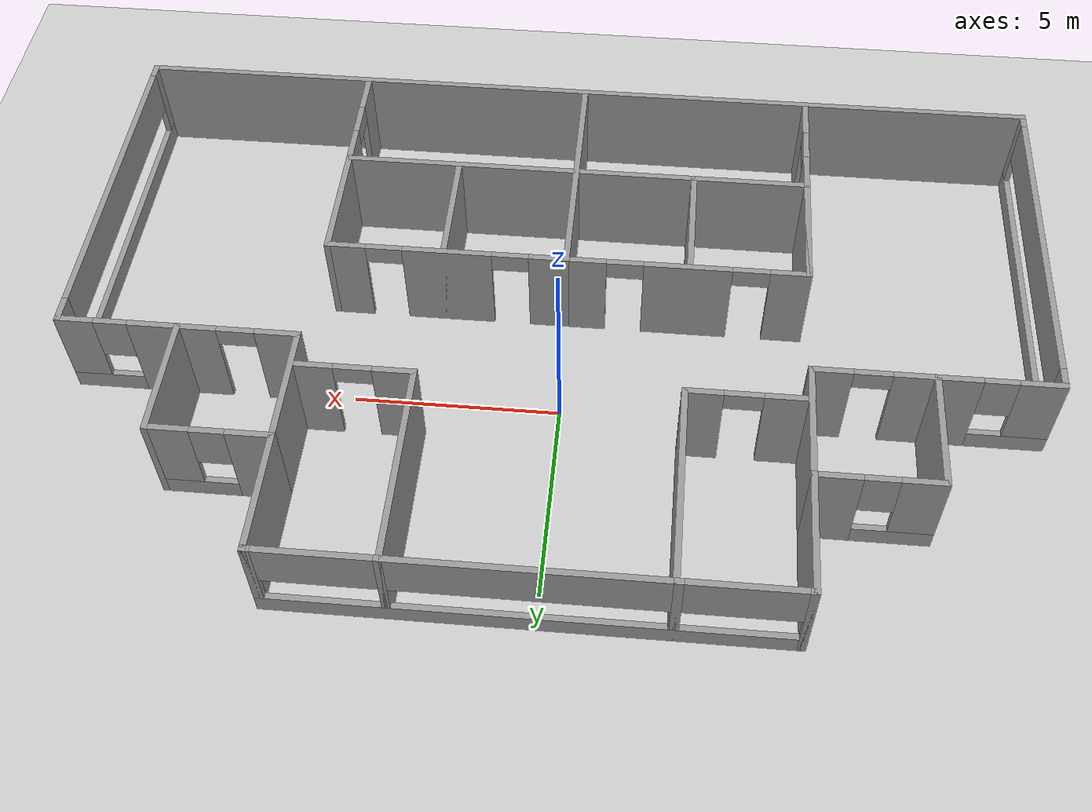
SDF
<sdf version="1.6">
 <world name="default">
  <model name="ground_plane">
   <static>1</static>
   <link name="link">
    <collision name="collision">
     <geometry><plane><normal>0 0 1</normal><size>100 100</size></plane></geometry>
     <surface><friction><ode><mu>100</mu><mu2>50</mu2></ode></friction></surface>
    </collision>
    <visual name="visual">
     <cast_shadows>0</cast_shadows>
     <geometry><plane><normal>0 0 1</normal><size>100 100</size></plane></geometry>
     <material>
      <script><uri>file://media/materials/scripts/gazebo.material</uri><name>Gazebo/Grey</name></script>
     </material>
    </visual>
   </link>
  </model>
  <model name="my_world">
   <pose>0.149259 -1.52681 0 0 -0 0</pose>
   <link name="Wall_11">
    <pose>-0 7.275 0 0 -0 0</pose>
    <visual name="Wall_11_Visual_0">
     <pose>-5.9021 0 1.25 0 -0 0</pose>
     <geometry><box><size>0.195806 0.15 2.5</size></box></geometry>
     <material>
      <script><uri>file://media/materials/scripts/gazebo.material</uri><name>Gazebo/Grey</name></script>
      <ambient>1 1 1 1</ambient>
     </material>
     <meta><layer>0</layer></meta>
    </visual>
    <collision name="Wall_11_Collision_0">
     <geometry><box><size>0.195806 0.15 2.5</size></box></geometry>
     <pose>-5.9021 0 1.25 0 -0 0</pose>
    </collision>
    <visual name="Wall_11_Visual_1">
     <pose>0.097903 0 0.25 0 -0 0</pose>
     <geometry><box><size>11.8042 0.15 0.5</size></box></geometry>
     <material>
      <script><uri>file://media/materials/scripts/gazebo.material</uri><name>Gazebo/Grey</name></script>
      <ambient>1 1 1 1</ambient>
     </material>
     <meta><layer>0</layer></meta>
    </visual>
    <collision name="Wall_11_Collision_1">
     <geometry><box><size>11.8042 0.15 0.5</size></box></geometry>
     <pose>0.097903 0 0.25 0 -0 0</pose>
    </collision>
    <visual name="Wall_11_Visual_2">
     <pose>-3.13049 0 1.5 0 -0 0</pose>
     <geometry><box><size>0.214424 0.15 2</size></box></geometry>
     <material>
      <script><uri>file://media/materials/scripts/gazebo.material</uri><name>Gazebo/Grey</name></script>
      <ambient>1 1 1 1</ambient>
     </material>
     <meta><layer>0</layer></meta>
    </visual>
    <collision name="Wall_11_Collision_2">
     <geometry><box><size>0.214424 0.15 2</size></box></geometry>
     <pose>-3.13049 0 1.5 0 -0 0</pose>
    </collision>
    <visual name="Wall_11_Visual_3">
     <pose>3.12221 0 1.5 0 -0 0</pose>
     <geometry><box><size>0.126973 0.15 2</size></box></geometry>
     <material>
      <script><uri>file://media/materials/scripts/gazebo.material</uri><name>Gazebo/Grey</name></script>
      <ambient>1 1 1 1</ambient>
     </material>
     <meta><layer>0</layer></meta>
    </visual>
    <collision name="Wall_11_Collision_3">
     <geometry><box><size>0.126973 0.15 2</size></box></geometry>
     <pose>3.12221 0 1.5 0 -0 0</pose>
    </collision>
    <visual name="Wall_11_Visual_4">
     <pose>5.88484 0 1.5 0 -0 0</pose>
     <geometry><box><size>0.230316 0.15 2</size></box></geometry>
     <material>
      <script><uri>file://media/materials/scripts/gazebo.material</uri><name>Gazebo/Grey</name></script>
      <ambient>1 1 1 1</ambient>
     </material>
     <meta><layer>0</layer></meta>
    </visual>
    <collision name="Wall_11_Collision_4">
     <geometry><box><size>0.230316 0.15 2</size></box></geometry>
     <pose>5.88484 0 1.5 0 -0 0</pose>
    </collision>
    <visual name="Wall_11_Visual_5">
     <pose>-4.52095 0 1.9 0 -0 0</pose>
     <geometry><box><size>2.5665 0.15 1.2</size></box></geometry>
     <material>
      <script><uri>file://media/materials/scripts/gazebo.material</uri><name>Gazebo/Grey</name></script>
      <ambient>1 1 1 1</ambient>
     </material>
     <meta><layer>0</layer></meta>
    </visual>
    <collision name="Wall_11_Collision_5">
     <geometry><box><size>2.5665 0.15 1.2</size></box></geometry>
     <pose>-4.52095 0 1.9 0 -0 0</pose>
    </collision>
    <visual name="Wall_11_Visual_6">
     <pose>0.017725 0 1.9 0 -0 0</pose>
     <geometry><box><size>6.082 0.15 1.2</size></box></geometry>
     <material>
      <script><uri>file://media/materials/scripts/gazebo.material</uri><name>Gazebo/Grey</name></script>
      <ambient>1 1 1 1</ambient>
     </material>
     <meta><layer>0</layer></meta>
    </visual>
    <collision name="Wall_11_Collision_6">
     <geometry><box><size>6.082 0.15 1.2</size></box></geometry>
     <pose>0.017725 0 1.9 0 -0 0</pose>
    </collision>
    <visual name="Wall_11_Visual_7">
     <pose>4.47769 0 1.9 0 -0 0</pose>
     <geometry><box><size>2.58399 0.15 1.2</size></box></geometry>
     <material>
      <script><uri>file://media/materials/scripts/gazebo.material</uri><name>Gazebo/Grey</name></script>
      <ambient>1 1 1 1</ambient>
     </material>
     <meta><layer>0</layer></meta>
    </visual>
    <collision name="Wall_11_Collision_7">
     <geometry><box><size>2.58399 0.15 1.2</size></box></geometry>
     <pose>4.47769 0 1.9 0 -0 0</pose>
    </collision>
   </link>
   <link name="Wall_12">
    <collision name="Wall_12_Collision">
     <geometry><box><size>3 0.15 2.5</size></box></geometry>
     <pose>0 0 1.25 0 -0 0</pose>
    </collision>
    <visual name="Wall_12_Visual">
     <pose>0 0 1.25 0 -0 0</pose>
     <geometry><box><size>3 0.15 2.5</size></box></geometry>
     <material>
      <script><uri>file://media/materials/scripts/gazebo.material</uri><name>Gazebo/Grey</name></script>
      <ambient>1 1 1 1</ambient>
     </material>
     <meta><layer>0</layer></meta>
    </visual>
    <pose>5.925 5.85 0 0 -0 -1.5708</pose>
   </link>
   <link name="Wall_15">
    <pose>7.35 4.425 0 0 -0 0</pose>
    <visual name="Wall_15_Visual_0">
     <pose>-0.934479 0 1.25 0 -0 0</pose>
     <geometry><box><size>1.13104 0.15 2.5</size></box></geometry>
     <material>
      <script><uri>file://media/materials/scripts/gazebo.material</uri><name>Gazebo/Grey</name></script>
      <ambient>1 1 1 1</ambient>
     </material>
     <meta><layer>0</layer></meta>
    </visual>
    <collision name="Wall_15_Collision_0">
     <geometry><box><size>1.13104 0.15 2.5</size></box></geometry>
     <pose>-0.934479 0 1.25 0 -0 0</pose>
    </collision>
    <visual name="Wall_15_Visual_1">
     <pose>0.565521 0 0.25 0 -0 0</pose>
     <geometry><box><size>1.86896 0.15 0.5</size></box></geometry>
     <material>
      <script><uri>file://media/materials/scripts/gazebo.material</uri><name>Gazebo/Grey</name></script>
      <ambient>1 1 1 1</ambient>
     </material>
     <meta><layer>0</layer></meta>
    </visual>
    <collision name="Wall_15_Collision_1">
     <geometry><box><size>1.86896 0.15 0.5</size></box></geometry>
     <pose>0.565521 0 0.25 0 -0 0</pose>
    </collision>
    <visual name="Wall_15_Visual_2">
     <pose>0.965521 0 1.5 0 -0 0</pose>
     <geometry><box><size>1.06896 0.15 2</size></box></geometry>
     <material>
      <script><uri>file://media/materials/scripts/gazebo.material</uri><name>Gazebo/Grey</name></script>
      <ambient>1 1 1 1</ambient>
     </material>
     <meta><layer>0</layer></meta>
    </visual>
    <collision name="Wall_15_Collision_2">
     <geometry><box><size>1.06896 0.15 2</size></box></geometry>
     <pose>0.965521 0 1.5 0 -0 0</pose>
    </collision>
    <visual name="Wall_15_Visual_3">
     <pose>0.031041 0 1.9 0 -0 0</pose>
     <geometry><box><size>0.8 0.15 1.2</size></box></geometry>
     <material>
      <script><uri>file://media/materials/scripts/gazebo.material</uri><name>Gazebo/Grey</name></script>
      <ambient>1 1 1 1</ambient>
     </material>
     <meta><layer>0</layer></meta>
    </visual>
    <collision name="Wall_15_Collision_3">
     <geometry><box><size>0.8 0.15 1.2</size></box></geometry>
     <pose>0.031041 0 1.9 0 -0 0</pose>
    </collision>
   </link>
   <link name="Wall_16">
    <collision name="Wall_16_Collision">
     <geometry><box><size>3 0.15 2.5</size></box></geometry>
     <pose>0 0 1.25 0 -0 0</pose>
    </collision>
    <visual name="Wall_16_Visual">
     <pose>0 0 1.25 0 -0 0</pose>
     <geometry><box><size>3 0.15 2.5</size></box></geometry>
     <material>
      <script><uri>file://media/materials/scripts/gazebo.material</uri><name>Gazebo/Grey</name></script>
      <ambient>1 1 1 1</ambient>
     </material>
     <meta><layer>0</layer></meta>
    </visual>
    <pose>8.775 3 0 0 -0 -1.5708</pose>
   </link>
   <link name="Wall_17">
    <pose>10.2 1.575 0 0 -0 0</pose>
    <visual name="Wall_17_Visual_0">
     <pose>-0.864079 0 1.25 0 -0 0</pose>
     <geometry><box><size>1.27184 0.15 2.5</size></box></geometry>
     <material>
      <script><uri>file://media/materials/scripts/gazebo.material</uri><name>Gazebo/Grey</name></script>
      <ambient>1 1 1 1</ambient>
     </material>
     <meta><layer>0</layer></meta>
    </visual>
    <collision name="Wall_17_Collision_0">
     <geometry><box><size>1.27184 0.15 2.5</size></box></geometry>
     <pose>-0.864079 0 1.25 0 -0 0</pose>
    </collision>
    <visual name="Wall_17_Visual_1">
     <pose>0.635921 0 0.25 0 -0 0</pose>
     <geometry><box><size>1.72816 0.15 0.5</size></box></geometry>
     <material>
      <script><uri>file://media/materials/scripts/gazebo.material</uri><name>Gazebo/Grey</name></script>
      <ambient>1 1 1 1</ambient>
     </material>
     <meta><layer>0</layer></meta>
    </visual>
    <collision name="Wall_17_Collision_1">
     <geometry><box><size>1.72816 0.15 0.5</size></box></geometry>
     <pose>0.635921 0 0.25 0 -0 0</pose>
    </collision>
    <visual name="Wall_17_Visual_2">
     <pose>1.03592 0 1.5 0 -0 0</pose>
     <geometry><box><size>0.928158 0.15 2</size></box></geometry>
     <material>
      <script><uri>file://media/materials/scripts/gazebo.material</uri><name>Gazebo/Grey</name></script>
      <ambient>1 1 1 1</ambient>
     </material>
     <meta><layer>0</layer></meta>
    </visual>
    <collision name="Wall_17_Collision_2">
     <geometry><box><size>0.928158 0.15 2</size></box></geometry>
     <pose>1.03592 0 1.5 0 -0 0</pose>
    </collision>
    <visual name="Wall_17_Visual_3">
     <pose>0.171842 0 1.9 0 -0 0</pose>
     <geometry><box><size>0.8 0.15 1.2</size></box></geometry>
     <material>
      <script><uri>file://media/materials/scripts/gazebo.material</uri><name>Gazebo/Grey</name></script>
      <ambient>1 1 1 1</ambient>
     </material>
     <meta><layer>0</layer></meta>
    </visual>
    <collision name="Wall_17_Collision_3">
     <geometry><box><size>0.8 0.15 1.2</size></box></geometry>
     <pose>0.171842 0 1.9 0 -0 0</pose>
    </collision>
   </link>
   <link name="Wall_30">
    <collision name="Wall_30_Collision">
     <geometry><box><size>3 0.15 2.5</size></box></geometry>
     <pose>0 0 1.25 0 -0 0</pose>
    </collision>
    <visual name="Wall_30_Visual">
     <pose>0 0 1.25 0 -0 0</pose>
     <geometry><box><size>3 0.15 2.5</size></box></geometry>
     <material>
      <script><uri>file://media/materials/scripts/gazebo.material</uri><name>Gazebo/Grey</name></script>
      <ambient>1 1 1 1</ambient>
     </material>
     <meta><layer>0</layer></meta>
    </visual>
    <pose>5.925 3 0 0 -0 -1.5708</pose>
   </link>
   <link name="Wall_31">
    <pose>7.35 1.575 0 0 -0 0</pose>
    <visual name="Wall_31_Visual_0">
     <pose>-0.950393 0 1.25 0 -0 0</pose>
     <geometry><box><size>1.09921 0.15 2.5</size></box></geometry>
     <material>
      <script><uri>file://media/materials/scripts/gazebo.material</uri><name>Gazebo/Grey</name></script>
      <ambient>1 1 1 1</ambient>
     </material>
     <meta><layer>0</layer></meta>
    </visual>
    <collision name="Wall_31_Collision_0">
     <geometry><box><size>1.09921 0.15 2.5</size></box></geometry>
     <pose>-0.950393 0 1.25 0 -0 0</pose>
    </collision>
    <visual name="Wall_31_Visual_1">
     <pose>0.999607 0 1.25 0 -0 0</pose>
     <geometry><box><size>1.00079 0.15 2.5</size></box></geometry>
     <material>
      <script><uri>file://media/materials/scripts/gazebo.material</uri><name>Gazebo/Grey</name></script>
      <ambient>1 1 1 1</ambient>
     </material>
     <meta><layer>0</layer></meta>
    </visual>
    <collision name="Wall_31_Collision_1">
     <geometry><box><size>1.00079 0.15 2.5</size></box></geometry>
     <pose>0.999607 0 1.25 0 -0 0</pose>
    </collision>
    <visual name="Wall_31_Visual_2">
     <pose>0.049213 0 2.25 0 -0 0</pose>
     <geometry><box><size>0.9 0.15 0.5</size></box></geometry>
     <material>
      <script><uri>file://media/materials/scripts/gazebo.material</uri><name>Gazebo/Grey</name></script>
      <ambient>1 1 1 1</ambient>
     </material>
     <meta><layer>0</layer></meta>
    </visual>
    <collision name="Wall_31_Collision_2">
     <geometry><box><size>0.9 0.15 0.5</size></box></geometry>
     <pose>0.049213 0 2.25 0 -0 0</pose>
    </collision>
   </link>
   <link name="Wall_34">
    <collision name="Wall_34_Collision">
     <geometry><box><size>5 0.15 2.5</size></box></geometry>
     <pose>0 0 1.25 0 -0 0</pose>
    </collision>
    <visual name="Wall_34_Visual">
     <pose>0 0 1.25 0 -0 0</pose>
     <geometry><box><size>5 0.15 2.5</size></box></geometry>
     <material>
      <script><uri>file://media/materials/scripts/gazebo.material</uri><name>Gazebo/Grey</name></script>
      <ambient>1 1 1 1</ambient>
     </material>
     <meta><layer>0</layer></meta>
    </visual>
    <pose>3.075 4.85 0 0 -0 -1.5708</pose>
   </link>
   <link name="Wall_35">
    <pose>4.5 2.425 0 0 -0 0</pose>
    <visual name="Wall_35_Visual_0">
     <pose>-0.977068 0 1.25 0 -0 0</pose>
     <geometry><box><size>1.04586 0.15 2.5</size></box></geometry>
     <material>
      <script><uri>file://media/materials/scripts/gazebo.material</uri><name>Gazebo/Grey</name></script>
      <ambient>1 1 1 1</ambient>
     </material>
     <meta><layer>0</layer></meta>
    </visual>
    <collision name="Wall_35_Collision_0">
     <geometry><box><size>1.04586 0.15 2.5</size></box></geometry>
     <pose>-0.977068 0 1.25 0 -0 0</pose>
    </collision>
    <visual name="Wall_35_Visual_1">
     <pose>0.972932 0 1.25 0 -0 0</pose>
     <geometry><box><size>1.05414 0.15 2.5</size></box></geometry>
     <material>
      <script><uri>file://media/materials/scripts/gazebo.material</uri><name>Gazebo/Grey</name></script>
      <ambient>1 1 1 1</ambient>
     </material>
     <meta><layer>0</layer></meta>
    </visual>
    <collision name="Wall_35_Collision_1">
     <geometry><box><size>1.05414 0.15 2.5</size></box></geometry>
     <pose>0.972932 0 1.25 0 -0 0</pose>
    </collision>
    <visual name="Wall_35_Visual_2">
     <pose>-0.004137 0 2.25 0 -0 0</pose>
     <geometry><box><size>0.9 0.15 0.5</size></box></geometry>
     <material>
      <script><uri>file://media/materials/scripts/gazebo.material</uri><name>Gazebo/Grey</name></script>
      <ambient>1 1 1 1</ambient>
     </material>
     <meta><layer>0</layer></meta>
    </visual>
    <collision name="Wall_35_Collision_2">
     <geometry><box><size>0.9 0.15 0.5</size></box></geometry>
     <pose>-0.004137 0 2.25 0 -0 0</pose>
    </collision>
   </link>
   <link name="Wall_39">
    <pose>2.85 -1.275 0 0 -0 3.14159</pose>
    <visual name="Wall_39_Visual_0">
     <pose>-2.4945 0 1.25 0 -0 0</pose>
     <geometry><box><size>1.01101 0.15 2.5</size></box></geometry>
     <material>
      <script><uri>file://media/materials/scripts/gazebo.material</uri><name>Gazebo/Grey</name></script>
      <ambient>1 1 1 1</ambient>
     </material>
     <meta><layer>0</layer></meta>
    </visual>
    <collision name="Wall_39_Collision_0">
     <geometry><box><size>1.01101 0.15 2.5</size></box></geometry>
     <pose>-2.4945 0 1.25 0 -0 0</pose>
    </collision>
    <visual name="Wall_39_Visual_1">
     <pose>0.008881 0 1.25 0 -0 0</pose>
     <geometry><box><size>2.19574 0.15 2.5</size></box></geometry>
     <material>
      <script><uri>file://media/materials/scripts/gazebo.material</uri><name>Gazebo/Grey</name></script>
      <ambient>1 1 1 1</ambient>
     </material>
     <meta><layer>0</layer></meta>
    </visual>
    <collision name="Wall_39_Collision_1">
     <geometry><box><size>2.19574 0.15 2.5</size></box></geometry>
     <pose>0.008881 0 1.25 0 -0 0</pose>
    </collision>
    <visual name="Wall_39_Visual_2">
     <pose>2.50338 0 1.25 0 -0 0</pose>
     <geometry><box><size>0.993249 0.15 2.5</size></box></geometry>
     <material>
      <script><uri>file://media/materials/scripts/gazebo.material</uri><name>Gazebo/Grey</name></script>
      <ambient>1 1 1 1</ambient>
     </material>
     <meta><layer>0</layer></meta>
    </visual>
    <collision name="Wall_39_Collision_2">
     <geometry><box><size>0.993249 0.15 2.5</size></box></geometry>
     <pose>2.50338 0 1.25 0 -0 0</pose>
    </collision>
    <visual name="Wall_39_Visual_3">
     <pose>-1.53899 0 2.25 0 -0 0</pose>
     <geometry><box><size>0.9 0.15 0.5</size></box></geometry>
     <material>
      <script><uri>file://media/materials/scripts/gazebo.material</uri><name>Gazebo/Grey</name></script>
      <ambient>1 1 1 1</ambient>
     </material>
     <meta><layer>0</layer></meta>
    </visual>
    <collision name="Wall_39_Collision_3">
     <geometry><box><size>0.9 0.15 0.5</size></box></geometry>
     <pose>-1.53899 0 2.25 0 -0 0</pose>
    </collision>
    <visual name="Wall_39_Visual_4">
     <pose>1.55675 0 2.25 0 -0 0</pose>
     <geometry><box><size>0.9 0.15 0.5</size></box></geometry>
     <material>
      <script><uri>file://media/materials/scripts/gazebo.material</uri><name>Gazebo/Grey</name></script>
      <ambient>1 1 1 1</ambient>
     </material>
     <meta><layer>0</layer></meta>
    </visual>
    <collision name="Wall_39_Collision_4">
     <geometry><box><size>0.9 0.15 0.5</size></box></geometry>
     <pose>1.55675 0 2.25 0 -0 0</pose>
    </collision>
   </link>
   <link name="Wall_40">
    <collision name="Wall_40_Collision">
     <geometry><box><size>6 0.15 2.5</size></box></geometry>
     <pose>0 0 1.25 0 -0 0</pose>
    </collision>
    <visual name="Wall_40_Visual">
     <pose>0 0 1.25 0 -0 0</pose>
     <geometry><box><size>6 0.15 2.5</size></box></geometry>
     <material>
      <script><uri>file://media/materials/scripts/gazebo.material</uri><name>Gazebo/Grey</name></script>
      <ambient>1 1 1 1</ambient>
     </material>
     <meta><layer>0</layer></meta>
    </visual>
    <pose>-0.075 -4.2 0 0 -0 -1.5708</pose>
   </link>
   <link name="Wall_45">
    <collision name="Wall_45_Collision">
     <geometry><box><size>6 0.15 2.5</size></box></geometry>
     <pose>0 0 1.25 0 -0 0</pose>
    </collision>
    <visual name="Wall_45_Visual">
     <pose>0 0 1.25 0 -0 0</pose>
     <geometry><box><size>6 0.15 2.5</size></box></geometry>
     <material>
      <script><uri>file://media/materials/scripts/gazebo.material</uri><name>Gazebo/Grey</name></script>
      <ambient>1 1 1 1</ambient>
     </material>
     <meta><layer>0</layer></meta>
    </visual>
    <pose>2.85 -4.275 0 0 -0 0</pose>
   </link>
   <link name="Wall_48">
    <collision name="Wall_48_Collision">
     <geometry><box><size>3 0.15 2.5</size></box></geometry>
     <pose>0 0 1.25 0 -0 0</pose>
    </collision>
    <visual name="Wall_48_Visual">
     <pose>0 0 1.25 0 -0 0</pose>
     <geometry><box><size>3 0.15 2.5</size></box></geometry>
     <material>
      <script><uri>file://media/materials/scripts/gazebo.material</uri><name>Gazebo/Grey</name></script>
      <ambient>1 1 1 1</ambient>
     </material>
     <meta><layer>0</layer></meta>
    </visual>
    <pose>2.925 -2.7 0 0 -0 -1.5708</pose>
   </link>
   <link name="Wall_54">
    <collision name="Wall_54_Collision">
     <geometry><box><size>3 0.15 2.5</size></box></geometry>
     <pose>0 0 1.25 0 -0 0</pose>
    </collision>
    <visual name="Wall_54_Visual">
     <pose>0 0 1.25 0 -0 0</pose>
     <geometry><box><size>3 0.15 2.5</size></box></geometry>
     <material>
      <script><uri>file://media/materials/scripts/gazebo.material</uri><name>Gazebo/Grey</name></script>
      <ambient>1 1 1 1</ambient>
     </material>
     <meta><layer>0</layer></meta>
    </visual>
    <pose>-5.925 5.85 0 0 -0 -1.5708</pose>
   </link>
   <link name="Wall_55">
    <pose>-7.35 4.425 0 0 -0 3.14159</pose>
    <visual name="Wall_55_Visual_0">
     <pose>-0.925969 0 1.25 0 -0 0</pose>
     <geometry><box><size>1.14806 0.15 2.5</size></box></geometry>
     <material>
      <script><uri>file://media/materials/scripts/gazebo.material</uri><name>Gazebo/Grey</name></script>
      <ambient>1 1 1 1</ambient>
     </material>
     <meta><layer>0</layer></meta>
    </visual>
    <collision name="Wall_55_Collision_0">
     <geometry><box><size>1.14806 0.15 2.5</size></box></geometry>
     <pose>-0.925969 0 1.25 0 -0 0</pose>
    </collision>
    <visual name="Wall_55_Visual_1">
     <pose>0.574031 0 0.25 0 -0 0</pose>
     <geometry><box><size>1.85194 0.15 0.5</size></box></geometry>
     <material>
      <script><uri>file://media/materials/scripts/gazebo.material</uri><name>Gazebo/Grey</name></script>
      <ambient>1 1 1 1</ambient>
     </material>
     <meta><layer>0</layer></meta>
    </visual>
    <collision name="Wall_55_Collision_1">
     <geometry><box><size>1.85194 0.15 0.5</size></box></geometry>
     <pose>0.574031 0 0.25 0 -0 0</pose>
    </collision>
    <visual name="Wall_55_Visual_2">
     <pose>0.974031 0 1.5 0 -0 0</pose>
     <geometry><box><size>1.05194 0.15 2</size></box></geometry>
     <material>
      <script><uri>file://media/materials/scripts/gazebo.material</uri><name>Gazebo/Grey</name></script>
      <ambient>1 1 1 1</ambient>
     </material>
     <meta><layer>0</layer></meta>
    </visual>
    <collision name="Wall_55_Collision_2">
     <geometry><box><size>1.05194 0.15 2</size></box></geometry>
     <pose>0.974031 0 1.5 0 -0 0</pose>
    </collision>
    <visual name="Wall_55_Visual_3">
     <pose>0.048061 0 1.9 0 -0 0</pose>
     <geometry><box><size>0.8 0.15 1.2</size></box></geometry>
     <material>
      <script><uri>file://media/materials/scripts/gazebo.material</uri><name>Gazebo/Grey</name></script>
      <ambient>1 1 1 1</ambient>
     </material>
     <meta><layer>0</layer></meta>
    </visual>
    <collision name="Wall_55_Collision_3">
     <geometry><box><size>0.8 0.15 1.2</size></box></geometry>
     <pose>0.048061 0 1.9 0 -0 0</pose>
    </collision>
   </link>
   <link name="Wall_56">
    <collision name="Wall_56_Collision">
     <geometry><box><size>3 0.15 2.5</size></box></geometry>
     <pose>0 0 1.25 0 -0 0</pose>
    </collision>
    <visual name="Wall_56_Visual">
     <pose>0 0 1.25 0 -0 0</pose>
     <geometry><box><size>3 0.15 2.5</size></box></geometry>
     <material>
      <script><uri>file://media/materials/scripts/gazebo.material</uri><name>Gazebo/Grey</name></script>
      <ambient>1 1 1 1</ambient>
     </material>
     <meta><layer>0</layer></meta>
    </visual>
    <pose>-8.775 3 0 0 -0 -1.5708</pose>
   </link>
   <link name="Wall_57">
    <pose>-10.2 1.575 0 0 -0 3.14159</pose>
    <visual name="Wall_57_Visual_0">
     <pose>-0.94302 0 1.25 0 -0 0</pose>
     <geometry><box><size>1.11396 0.15 2.5</size></box></geometry>
     <material>
      <script><uri>file://media/materials/scripts/gazebo.material</uri><name>Gazebo/Grey</name></script>
      <ambient>1 1 1 1</ambient>
     </material>
     <meta><layer>0</layer></meta>
    </visual>
    <collision name="Wall_57_Collision_0">
     <geometry><box><size>1.11396 0.15 2.5</size></box></geometry>
     <pose>-0.94302 0 1.25 0 -0 0</pose>
    </collision>
    <visual name="Wall_57_Visual_1">
     <pose>0.55698 0 0.25 0 -0 0</pose>
     <geometry><box><size>1.88604 0.15 0.5</size></box></geometry>
     <material>
      <script><uri>file://media/materials/scripts/gazebo.material</uri><name>Gazebo/Grey</name></script>
      <ambient>1 1 1 1</ambient>
     </material>
     <meta><layer>0</layer></meta>
    </visual>
    <collision name="Wall_57_Collision_1">
     <geometry><box><size>1.88604 0.15 0.5</size></box></geometry>
     <pose>0.55698 0 0.25 0 -0 0</pose>
    </collision>
    <visual name="Wall_57_Visual_2">
     <pose>0.95698 0 1.5 0 -0 0</pose>
     <geometry><box><size>1.08604 0.15 2</size></box></geometry>
     <material>
      <script><uri>file://media/materials/scripts/gazebo.material</uri><name>Gazebo/Grey</name></script>
      <ambient>1 1 1 1</ambient>
     </material>
     <meta><layer>0</layer></meta>
    </visual>
    <collision name="Wall_57_Collision_2">
     <geometry><box><size>1.08604 0.15 2</size></box></geometry>
     <pose>0.95698 0 1.5 0 -0 0</pose>
    </collision>
    <visual name="Wall_57_Visual_3">
     <pose>0.013961 0 1.9 0 -0 0</pose>
     <geometry><box><size>0.8 0.15 1.2</size></box></geometry>
     <material>
      <script><uri>file://media/materials/scripts/gazebo.material</uri><name>Gazebo/Grey</name></script>
      <ambient>1 1 1 1</ambient>
     </material>
     <meta><layer>0</layer></meta>
    </visual>
    <collision name="Wall_57_Collision_3">
     <geometry><box><size>0.8 0.15 1.2</size></box></geometry>
     <pose>0.013961 0 1.9 0 -0 0</pose>
    </collision>
   </link>
   <link name="Wall_59">
    <pose>-11.625 -2.85 0 0 -0 -1.5708</pose>
    <visual name="Wall_59_Visual_0">
     <pose>-4.21718 0 1.25 0 -0 0</pose>
     <geometry><box><size>0.565642 0.15 2.5</size></box></geometry>
     <material>
      <script><uri>file://media/materials/scripts/gazebo.material</uri><name>Gazebo/Grey</name></script>
      <ambient>1 1 1 1</ambient>
     </material>
     <meta><layer>0</layer></meta>
    </visual>
    <collision name="Wall_59_Collision_0">
     <geometry><box><size>0.565642 0.15 2.5</size></box></geometry>
     <pose>-4.21718 0 1.25 0 -0 0</pose>
    </collision>
    <visual name="Wall_59_Visual_1">
     <pose>0.282821 0 0.25 0 -0 0</pose>
     <geometry><box><size>8.43436 0.15 0.5</size></box></geometry>
     <material>
      <script><uri>file://media/materials/scripts/gazebo.material</uri><name>Gazebo/Grey</name></script>
      <ambient>1 1 1 1</ambient>
     </material>
     <meta><layer>0</layer></meta>
    </visual>
    <collision name="Wall_59_Collision_1">
     <geometry><box><size>8.43436 0.15 0.5</size></box></geometry>
     <pose>0.282821 0 0.25 0 -0 0</pose>
    </collision>
    <visual name="Wall_59_Visual_2">
     <pose>4.27963 0 1.5 0 -0 0</pose>
     <geometry><box><size>0.440739 0.15 2</size></box></geometry>
     <material>
      <script><uri>file://media/materials/scripts/gazebo.material</uri><name>Gazebo/Grey</name></script>
      <ambient>1 1 1 1</ambient>
     </material>
     <meta><layer>0</layer></meta>
    </visual>
    <collision name="Wall_59_Collision_2">
     <geometry><box><size>0.440739 0.15 2</size></box></geometry>
     <pose>4.27963 0 1.5 0 -0 0</pose>
    </collision>
    <visual name="Wall_59_Visual_3">
     <pose>0.062451 0 1.9 0 -0 0</pose>
     <geometry><box><size>7.99362 0.15 1.2</size></box></geometry>
     <material>
      <script><uri>file://media/materials/scripts/gazebo.material</uri><name>Gazebo/Grey</name></script>
      <ambient>1 1 1 1</ambient>
     </material>
     <meta><layer>0</layer></meta>
    </visual>
    <collision name="Wall_59_Collision_3">
     <geometry><box><size>7.99362 0.15 1.2</size></box></geometry>
     <pose>0.062451 0 1.9 0 -0 0</pose>
    </collision>
   </link>
   <link name="Wall_61">
    <pose>11.625 -2.85 0 0 -0 -1.5708</pose>
    <visual name="Wall_61_Visual_0">
     <pose>-4.15935 0 1.25 0 -0 0</pose>
     <geometry><box><size>0.681295 0.15 2.5</size></box></geometry>
     <material>
      <script><uri>file://media/materials/scripts/gazebo.material</uri><name>Gazebo/Grey</name></script>
      <ambient>1 1 1 1</ambient>
     </material>
     <meta><layer>0</layer></meta>
    </visual>
    <collision name="Wall_61_Collision_0">
     <geometry><box><size>0.681295 0.15 2.5</size></box></geometry>
     <pose>-4.15935 0 1.25 0 -0 0</pose>
    </collision>
    <visual name="Wall_61_Visual_1">
     <pose>0.340648 0 0.25 0 -0 0</pose>
     <geometry><box><size>8.3187 0.15 0.5</size></box></geometry>
     <material>
      <script><uri>file://media/materials/scripts/gazebo.material</uri><name>Gazebo/Grey</name></script>
      <ambient>1 1 1 1</ambient>
     </material>
     <meta><layer>0</layer></meta>
    </visual>
    <collision name="Wall_61_Collision_1">
     <geometry><box><size>8.3187 0.15 0.5</size></box></geometry>
     <pose>0.340648 0 0.25 0 -0 0</pose>
    </collision>
    <visual name="Wall_61_Visual_2">
     <pose>4.27963 0 1.5 0 -0 0</pose>
     <geometry><box><size>0.440739 0.15 2</size></box></geometry>
     <material>
      <script><uri>file://media/materials/scripts/gazebo.material</uri><name>Gazebo/Grey</name></script>
      <ambient>1 1 1 1</ambient>
     </material>
     <meta><layer>0</layer></meta>
    </visual>
    <collision name="Wall_61_Collision_2">
     <geometry><box><size>0.440739 0.15 2</size></box></geometry>
     <pose>4.27963 0 1.5 0 -0 0</pose>
    </collision>
    <visual name="Wall_61_Visual_3">
     <pose>0.120278 0 1.9 0 -0 0</pose>
     <geometry><box><size>7.87797 0.15 1.2</size></box></geometry>
     <material>
      <script><uri>file://media/materials/scripts/gazebo.material</uri><name>Gazebo/Grey</name></script>
      <ambient>1 1 1 1</ambient>
     </material>
     <meta><layer>0</layer></meta>
    </visual>
    <collision name="Wall_61_Collision_3">
     <geometry><box><size>7.87797 0.15 1.2</size></box></geometry>
     <pose>0.120278 0 1.9 0 -0 0</pose>
    </collision>
   </link>
   <link name="Wall_62">
    <collision name="Wall_62_Collision">
     <geometry><box><size>23.4 0.15 2.5</size></box></geometry>
     <pose>0 0 1.25 0 -0 0</pose>
    </collision>
    <visual name="Wall_62_Visual">
     <pose>0 0 1.25 0 -0 0</pose>
     <geometry><box><size>23.4 0.15 2.5</size></box></geometry>
     <material>
      <script><uri>file://media/materials/scripts/gazebo.material</uri><name>Gazebo/Grey</name></script>
      <ambient>1 1 1 1</ambient>
     </material>
     <meta><layer>0</layer></meta>
    </visual>
    <pose>-0 -7.275 0 0 -0 3.14159</pose>
   </link>
   <link name="Wall_64">
    <pose>5.775 -4.2 0 0 -0 -1.5708</pose>
    <visual name="Wall_64_Visual_0">
     <pose>-0.963173 0 1.25 0 -0 0</pose>
     <geometry><box><size>4.07365 0.15 2.5</size></box></geometry>
     <material>
      <script><uri>file://media/materials/scripts/gazebo.material</uri><name>Gazebo/Grey</name></script>
      <ambient>1 1 1 1</ambient>
     </material>
     <meta><layer>0</layer></meta>
    </visual>
    <collision name="Wall_64_Collision_0">
     <geometry><box><size>4.07365 0.15 2.5</size></box></geometry>
     <pose>-0.963173 0 1.25 0 -0 0</pose>
    </collision>
    <visual name="Wall_64_Visual_1">
     <pose>2.48683 0 1.25 0 -0 0</pose>
     <geometry><box><size>1.02635 0.15 2.5</size></box></geometry>
     <material>
      <script><uri>file://media/materials/scripts/gazebo.material</uri><name>Gazebo/Grey</name></script>
      <ambient>1 1 1 1</ambient>
     </material>
     <meta><layer>0</layer></meta>
    </visual>
    <collision name="Wall_64_Collision_1">
     <geometry><box><size>1.02635 0.15 2.5</size></box></geometry>
     <pose>2.48683 0 1.25 0 -0 0</pose>
    </collision>
    <visual name="Wall_64_Visual_2">
     <pose>1.52365 0 2.25 0 -0 0</pose>
     <geometry><box><size>0.9 0.15 0.5</size></box></geometry>
     <material>
      <script><uri>file://media/materials/scripts/gazebo.material</uri><name>Gazebo/Grey</name></script>
      <ambient>1 1 1 1</ambient>
     </material>
     <meta><layer>0</layer></meta>
    </visual>
    <collision name="Wall_64_Collision_2">
     <geometry><box><size>0.9 0.15 0.5</size></box></geometry>
     <pose>1.52365 0 2.25 0 -0 0</pose>
    </collision>
   </link>
   <link name="Wall_66">
    <pose>-3 -1.275 0 0 -0 3.14159</pose>
    <visual name="Wall_66_Visual_0">
     <pose>-2.47242 0 1.25 0 -0 0</pose>
     <geometry><box><size>1.05516 0.15 2.5</size></box></geometry>
     <material>
      <script><uri>file://media/materials/scripts/gazebo.material</uri><name>Gazebo/Grey</name></script>
      <ambient>1 1 1 1</ambient>
     </material>
     <meta><layer>0</layer></meta>
    </visual>
    <collision name="Wall_66_Collision_0">
     <geometry><box><size>1.05516 0.15 2.5</size></box></geometry>
     <pose>-2.47242 0 1.25 0 -0 0</pose>
    </collision>
    <visual name="Wall_66_Visual_1">
     <pose>0.026797 0 1.25 0 -0 0</pose>
     <geometry><box><size>2.14327 0.15 2.5</size></box></geometry>
     <material>
      <script><uri>file://media/materials/scripts/gazebo.material</uri><name>Gazebo/Grey</name></script>
      <ambient>1 1 1 1</ambient>
     </material>
     <meta><layer>0</layer></meta>
    </visual>
    <collision name="Wall_66_Collision_1">
     <geometry><box><size>2.14327 0.15 2.5</size></box></geometry>
     <pose>0.026797 0 1.25 0 -0 0</pose>
    </collision>
    <visual name="Wall_66_Visual_2">
     <pose>2.49922 0 1.25 0 -0 0</pose>
     <geometry><box><size>1.00157 0.15 2.5</size></box></geometry>
     <material>
      <script><uri>file://media/materials/scripts/gazebo.material</uri><name>Gazebo/Grey</name></script>
      <ambient>1 1 1 1</ambient>
     </material>
     <meta><layer>0</layer></meta>
    </visual>
    <collision name="Wall_66_Collision_2">
     <geometry><box><size>1.00157 0.15 2.5</size></box></geometry>
     <pose>2.49922 0 1.25 0 -0 0</pose>
    </collision>
    <visual name="Wall_66_Visual_3">
     <pose>-1.49484 0 2.25 0 -0 0</pose>
     <geometry><box><size>0.9 0.15 0.5</size></box></geometry>
     <material>
      <script><uri>file://media/materials/scripts/gazebo.material</uri><name>Gazebo/Grey</name></script>
      <ambient>1 1 1 1</ambient>
     </material>
     <meta><layer>0</layer></meta>
    </visual>
    <collision name="Wall_66_Collision_3">
     <geometry><box><size>0.9 0.15 0.5</size></box></geometry>
     <pose>-1.49484 0 2.25 0 -0 0</pose>
    </collision>
    <visual name="Wall_66_Visual_4">
     <pose>1.54843 0 2.25 0 -0 0</pose>
     <geometry><box><size>0.9 0.15 0.5</size></box></geometry>
     <material>
      <script><uri>file://media/materials/scripts/gazebo.material</uri><name>Gazebo/Grey</name></script>
      <ambient>1 1 1 1</ambient>
     </material>
     <meta><layer>0</layer></meta>
    </visual>
    <collision name="Wall_66_Collision_4">
     <geometry><box><size>0.9 0.15 0.5</size></box></geometry>
     <pose>1.54843 0 2.25 0 -0 0</pose>
    </collision>
   </link>
   <link name="Wall_67">
    <pose>-5.925 -4.2 0 0 -0 -1.5708</pose>
    <visual name="Wall_67_Visual_0">
     <pose>-0.954428 0 1.25 0 -0 0</pose>
     <geometry><box><size>4.09114 0.15 2.5</size></box></geometry>
     <material>
      <script><uri>file://media/materials/scripts/gazebo.material</uri><name>Gazebo/Grey</name></script>
      <ambient>1 1 1 1</ambient>
     </material>
     <meta><layer>0</layer></meta>
    </visual>
    <collision name="Wall_67_Collision_0">
     <geometry><box><size>4.09114 0.15 2.5</size></box></geometry>
     <pose>-0.954428 0 1.25 0 -0 0</pose>
    </collision>
    <visual name="Wall_67_Visual_1">
     <pose>2.49557 0 1.25 0 -0 0</pose>
     <geometry><box><size>1.00886 0.15 2.5</size></box></geometry>
     <material>
      <script><uri>file://media/materials/scripts/gazebo.material</uri><name>Gazebo/Grey</name></script>
      <ambient>1 1 1 1</ambient>
     </material>
     <meta><layer>0</layer></meta>
    </visual>
    <collision name="Wall_67_Collision_1">
     <geometry><box><size>1.00886 0.15 2.5</size></box></geometry>
     <pose>2.49557 0 1.25 0 -0 0</pose>
    </collision>
    <visual name="Wall_67_Visual_2">
     <pose>1.54114 0 2.25 0 -0 0</pose>
     <geometry><box><size>0.9 0.15 0.5</size></box></geometry>
     <material>
      <script><uri>file://media/materials/scripts/gazebo.material</uri><name>Gazebo/Grey</name></script>
      <ambient>1 1 1 1</ambient>
     </material>
     <meta><layer>0</layer></meta>
    </visual>
    <collision name="Wall_67_Collision_2">
     <geometry><box><size>0.9 0.15 0.5</size></box></geometry>
     <pose>1.54114 0 2.25 0 -0 0</pose>
    </collision>
   </link>
   <link name="Wall_69">
    <collision name="Wall_69_Collision">
     <geometry><box><size>3.25 0.15 2.5</size></box></geometry>
     <pose>0 0 1.25 0 -0 0</pose>
    </collision>
    <visual name="Wall_69_Visual">
     <pose>0 0 1.25 0 -0 0</pose>
     <geometry><box><size>3.25 0.15 2.5</size></box></geometry>
     <material>
      <script><uri>file://media/materials/scripts/gazebo.material</uri><name>Gazebo/Grey</name></script>
      <ambient>1 1 1 1</ambient>
     </material>
     <meta><layer>0</layer></meta>
    </visual>
    <pose>-5.925 -2.825 0 0 -0 -1.5708</pose>
   </link>
   <link name="Wall_71">
    <collision name="Wall_71_Collision">
     <geometry><box><size>6 0.15 2.5</size></box></geometry>
     <pose>0 0 1.25 0 -0 0</pose>
    </collision>
    <visual name="Wall_71_Visual">
     <pose>0 0 1.25 0 -0 0</pose>
     <geometry><box><size>6 0.15 2.5</size></box></geometry>
     <material>
      <script><uri>file://media/materials/scripts/gazebo.material</uri><name>Gazebo/Grey</name></script>
      <ambient>1 1 1 1</ambient>
     </material>
     <meta><layer>0</layer></meta>
    </visual>
    <pose>-3 -4.275 0 0 -0 3.14159</pose>
   </link>
   <link name="Wall_73">
    <collision name="Wall_73_Collision">
     <geometry><box><size>3 0.15 2.5</size></box></geometry>
     <pose>0 0 1.25 0 -0 0</pose>
    </collision>
    <visual name="Wall_73_Visual">
     <pose>0 0 1.25 0 -0 0</pose>
     <geometry><box><size>3 0.15 2.5</size></box></geometry>
     <material>
      <script><uri>file://media/materials/scripts/gazebo.material</uri><name>Gazebo/Grey</name></script>
      <ambient>1 1 1 1</ambient>
     </material>
     <meta><layer>0</layer></meta>
    </visual>
    <pose>-3.075 -2.85 0 0 -0 1.5708</pose>
   </link>
   <link name="Wall_75">
    <collision name="Wall_75_Collision">
     <geometry><box><size>3 0.15 2.5</size></box></geometry>
     <pose>0 0 1.25 0 -0 0</pose>
    </collision>
    <visual name="Wall_75_Visual">
     <pose>0 0 1.25 0 -0 0</pose>
     <geometry><box><size>3 0.15 2.5</size></box></geometry>
     <material>
      <script><uri>file://media/materials/scripts/gazebo.material</uri><name>Gazebo/Grey</name></script>
      <ambient>1 1 1 1</ambient>
     </material>
     <meta><layer>0</layer></meta>
    </visual>
    <pose>-5.925 3 0 0 -0 -1.5708</pose>
   </link>
   <link name="Wall_76">
    <pose>-7.35 1.575 0 0 -0 3.14159</pose>
    <visual name="Wall_76_Visual_0">
     <pose>-0.986291 0 1.25 0 -0 0</pose>
     <geometry><box><size>1.02742 0.15 2.5</size></box></geometry>
     <material>
      <script><uri>file://media/materials/scripts/gazebo.material</uri><name>Gazebo/Grey</name></script>
      <ambient>1 1 1 1</ambient>
     </material>
     <meta><layer>0</layer></meta>
    </visual>
    <collision name="Wall_76_Collision_0">
     <geometry><box><size>1.02742 0.15 2.5</size></box></geometry>
     <pose>-0.986291 0 1.25 0 -0 0</pose>
    </collision>
    <visual name="Wall_76_Visual_1">
     <pose>0.963709 0 1.25 0 -0 0</pose>
     <geometry><box><size>1.07258 0.15 2.5</size></box></geometry>
     <material>
      <script><uri>file://media/materials/scripts/gazebo.material</uri><name>Gazebo/Grey</name></script>
      <ambient>1 1 1 1</ambient>
     </material>
     <meta><layer>0</layer></meta>
    </visual>
    <collision name="Wall_76_Collision_1">
     <geometry><box><size>1.07258 0.15 2.5</size></box></geometry>
     <pose>0.963709 0 1.25 0 -0 0</pose>
    </collision>
    <visual name="Wall_76_Visual_2">
     <pose>-0.022581 0 2.25 0 -0 0</pose>
     <geometry><box><size>0.9 0.15 0.5</size></box></geometry>
     <material>
      <script><uri>file://media/materials/scripts/gazebo.material</uri><name>Gazebo/Grey</name></script>
      <ambient>1 1 1 1</ambient>
     </material>
     <meta><layer>0</layer></meta>
    </visual>
    <collision name="Wall_76_Collision_2">
     <geometry><box><size>0.9 0.15 0.5</size></box></geometry>
     <pose>-0.022581 0 2.25 0 -0 0</pose>
    </collision>
   </link>
   <link name="Wall_79">
    <collision name="Wall_79_Collision">
     <geometry><box><size>5 0.15 2.5</size></box></geometry>
     <pose>0 0 1.25 0 -0 0</pose>
    </collision>
    <visual name="Wall_79_Visual">
     <pose>0 0 1.25 0 -0 0</pose>
     <geometry><box><size>5 0.15 2.5</size></box></geometry>
     <material>
      <script><uri>file://media/materials/scripts/gazebo.material</uri><name>Gazebo/Grey</name></script>
      <ambient>1 1 1 1</ambient>
     </material>
     <meta><layer>0</layer></meta>
    </visual>
    <pose>-3.075 4.85 0 0 -0 -1.5708</pose>
   </link>
   <link name="Wall_80">
    <pose>-4.5 2.425 0 0 -0 3.14159</pose>
    <visual name="Wall_80_Visual_0">
     <pose>-1.02137 0 1.25 0 -0 0</pose>
     <geometry><box><size>0.957261 0.15 2.5</size></box></geometry>
     <material>
      <script><uri>file://media/materials/scripts/gazebo.material</uri><name>Gazebo/Grey</name></script>
      <ambient>1 1 1 1</ambient>
     </material>
     <meta><layer>0</layer></meta>
    </visual>
    <collision name="Wall_80_Collision_0">
     <geometry><box><size>0.957261 0.15 2.5</size></box></geometry>
     <pose>-1.02137 0 1.25 0 -0 0</pose>
    </collision>
    <visual name="Wall_80_Visual_1">
     <pose>0.92863 0 1.25 0 -0 0</pose>
     <geometry><box><size>1.14274 0.15 2.5</size></box></geometry>
     <material>
      <script><uri>file://media/materials/scripts/gazebo.material</uri><name>Gazebo/Grey</name></script>
      <ambient>1 1 1 1</ambient>
     </material>
     <meta><layer>0</layer></meta>
    </visual>
    <collision name="Wall_80_Collision_1">
     <geometry><box><size>1.14274 0.15 2.5</size></box></geometry>
     <pose>0.92863 0 1.25 0 -0 0</pose>
    </collision>
    <visual name="Wall_80_Visual_2">
     <pose>-0.092739 0 2.25 0 -0 0</pose>
     <geometry><box><size>0.9 0.15 0.5</size></box></geometry>
     <material>
      <script><uri>file://media/materials/scripts/gazebo.material</uri><name>Gazebo/Grey</name></script>
      <ambient>1 1 1 1</ambient>
     </material>
     <meta><layer>0</layer></meta>
    </visual>
    <collision name="Wall_80_Collision_2">
     <geometry><box><size>0.9 0.15 0.5</size></box></geometry>
     <pose>-0.092739 0 2.25 0 -0 0</pose>
    </collision>
   </link>
   <static>1</static>
  </model>
 </world>
</sdf>
